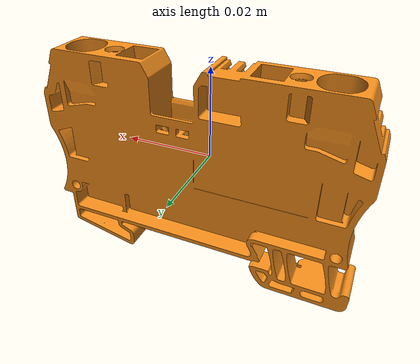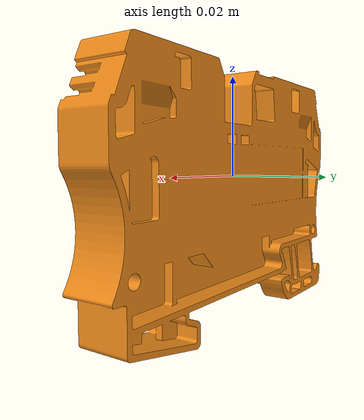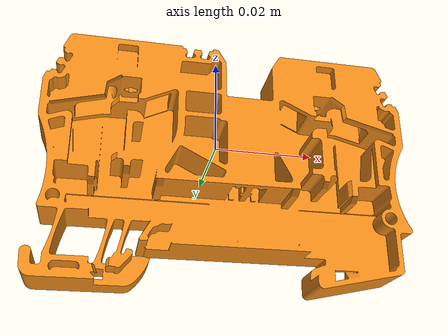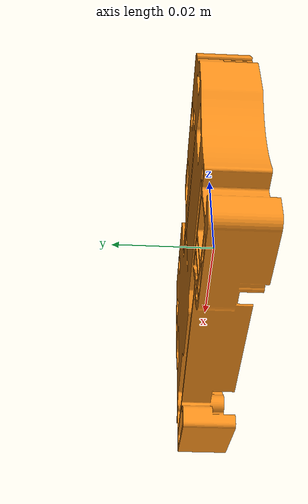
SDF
<?xml version='1.0'?>
<sdf version='1.4'>
  <model name='klemme1'>
    <link name='klemme1_link'>
      <pose>0 0 0 0 0 0</pose>
      <inertial>
        <pose>0 0 0 0 0 0</pose>
        <mass>0.7</mass>
        <inertia>
          <ixx>0.0033299</ixx>
          <ixy>0</ixy>
          <ixz>0</ixz>
          <iyy>0.0019311</iyy>
          <iyz>0</iyz>
          <izz>0.0048214</izz>
        </inertia>
      </inertial>
      <collision name='klemme1_link_collision'>
        <pose>0 0 0 0 0 0</pose>
        <geometry>
          <mesh>
            <scale>1 1 1</scale>
            <uri>model://klemme1/meshes/klemme1-collision.stl</uri>
          </mesh>
        </geometry>
      </collision>
      <visual name='klemme1_link_visual'>
        <pose>0 0 0 0 0 0</pose>
        <geometry>
          <mesh>
            <scale>1 1 1</scale>
            <uri>model://klemme1/meshes/klemme1.stl</uri>
          </mesh>
        </geometry>
        <material>
          <script>
            <uri>model://klemme1/materials/scripts/klemme1.material</uri>
            <name>klemme1/Orange</name>
          </script>
        </material>
      </visual>
    </link>
    <pose frame=''>0 0 0 0 0 0</pose>
  </model>
</sdf>
